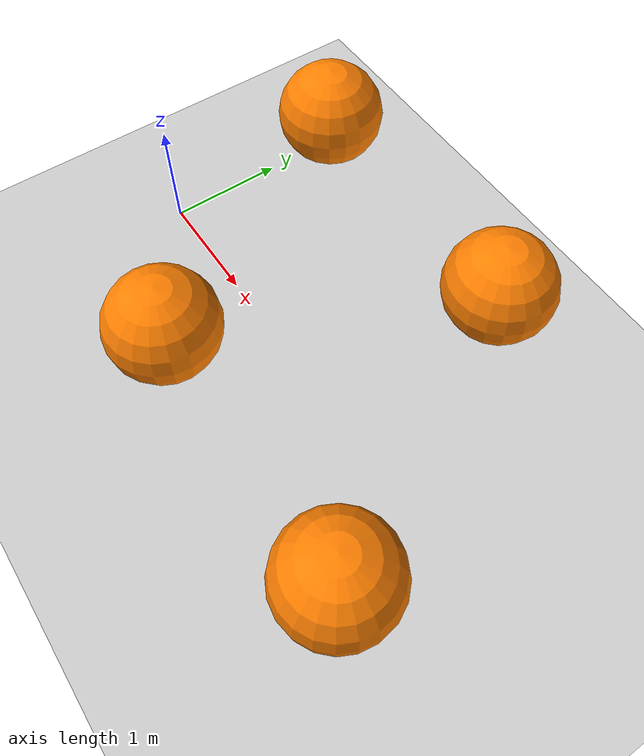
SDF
<?xml version="1.0" encoding="UTF-8"?>
<sdf version="1.9">
  <world name="arc_gauntlet">
    <physics type="ode">
      <max_step_size>0.004</max_step_size>
      <real_time_factor>1.0</real_time_factor>
      <real_time_update_rate>250</real_time_update_rate>
    </physics>
    <gravity>0 0 -9.8</gravity>
    <magnetic_field>6e-06 2.3e-05 -4.2e-05</magnetic_field>
    <atmosphere type="adiabatic"/>
    <spherical_coordinates>
      <surface_model>EARTH_WGS84</surface_model>
      <world_frame_orientation>ENU</world_frame_orientation>
      <latitude_deg>47.397971057728974</latitude_deg>
      <longitude_deg>8.546163739800146</longitude_deg>
      <elevation>0</elevation>
    </spherical_coordinates>
    <scene>
      <grid>false</grid>
      <ambient>0.4 0.4 0.4 1</ambient>
      <background>0.7 0.7 0.7 1</background>
      <shadows>true</shadows>
    </scene>

    <!-- Ground plane -->
    <model name="ground_plane">
      <static>true</static>
      <link name="link">
        <collision name="collision">
          <geometry>
            <plane><normal>0 0 1</normal><size>1 1</size></plane>
          </geometry>
        </collision>
        <visual name="visual">
          <geometry>
            <plane><normal>0 0 1</normal><size>100 100</size></plane>
          </geometry>
          <material>
            <ambient>0.8 0.8 0.8 1</ambient>
            <diffuse>0.8 0.8 0.8 1</diffuse>
            <specular>0.8 0.8 0.8 1</specular>
          </material>
        </visual>
      </link>
    </model>

    <!-- Sun -->
    <light name="sunUTC" type="directional">
      <pose>0 0 500 0 0 0</pose>
      <cast_shadows>true</cast_shadows>
      <intensity>1</intensity>
      <direction>0.001 0.625 -0.78</direction>
      <diffuse>0.904 0.904 0.904 1</diffuse>
      <specular>0.271 0.271 0.271 1</specular>
      <attenuation>
        <range>2000</range>
        <linear>0</linear>
        <constant>1</constant>
        <quadratic>0</quadratic>
      </attenuation>
    </light>

    <!-- Obstacle 0: 1.0 E, 1.0 N -->
    <model name="obstacle_0">
      <static>true</static>
      <pose>1.0 1.0 1.5 0 0 0</pose>
      <link name="link">
        <collision name="collision">
          <geometry><sphere><radius>0.4</radius></sphere></geometry>
        </collision>
        <visual name="visual">
          <geometry><sphere><radius>0.4</radius></sphere></geometry>
          <material>
            <ambient>1.0 0.5 0.0 1</ambient>
            <diffuse>1.0 0.5 0.0 1</diffuse>
            <specular>0.5 0.5 0.5 1</specular>
          </material>
        </visual>
      </link>
    </model>

    <!-- Obstacle 1: 2.0 E, -1.0 N -->
    <model name="obstacle_1">
      <static>true</static>
      <pose>2.0 -1.0 1.5 0 0 0</pose>
      <link name="link">
        <collision name="collision">
          <geometry><sphere><radius>0.4</radius></sphere></geometry>
        </collision>
        <visual name="visual">
          <geometry><sphere><radius>0.4</radius></sphere></geometry>
          <material>
            <ambient>1.0 0.5 0.0 1</ambient>
            <diffuse>1.0 0.5 0.0 1</diffuse>
            <specular>0.5 0.5 0.5 1</specular>
          </material>
        </visual>
      </link>
    </model>

    <!-- Obstacle 2: 3.0 E, 1.0 N -->
    <model name="obstacle_2">
      <static>true</static>
      <pose>3.0 1.0 1.5 0 0 0</pose>
      <link name="link">
        <collision name="collision">
          <geometry><sphere><radius>0.4</radius></sphere></geometry>
        </collision>
        <visual name="visual">
          <geometry><sphere><radius>0.4</radius></sphere></geometry>
          <material>
            <ambient>1.0 0.5 0.0 1</ambient>
            <diffuse>1.0 0.5 0.0 1</diffuse>
            <specular>0.5 0.5 0.5 1</specular>
          </material>
        </visual>
      </link>
    </model>

    <!-- Obstacle 3: 4.0 E, -1.0 N -->
    <model name="obstacle_3">
      <static>true</static>
      <pose>4.0 -1.0 1.5 0 0 0</pose>
      <link name="link">
        <collision name="collision">
          <geometry><sphere><radius>0.4</radius></sphere></geometry>
        </collision>
        <visual name="visual">
          <geometry><sphere><radius>0.4</radius></sphere></geometry>
          <material>
            <ambient>1.0 0.5 0.0 1</ambient>
            <diffuse>1.0 0.5 0.0 1</diffuse>
            <specular>0.5 0.5 0.5 1</specular>
          </material>
        </visual>
      </link>
    </model>

  </world>
</sdf>
